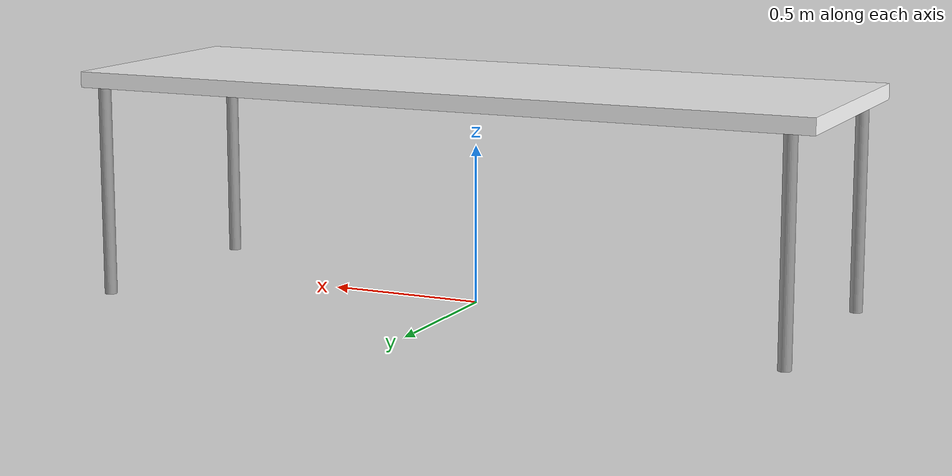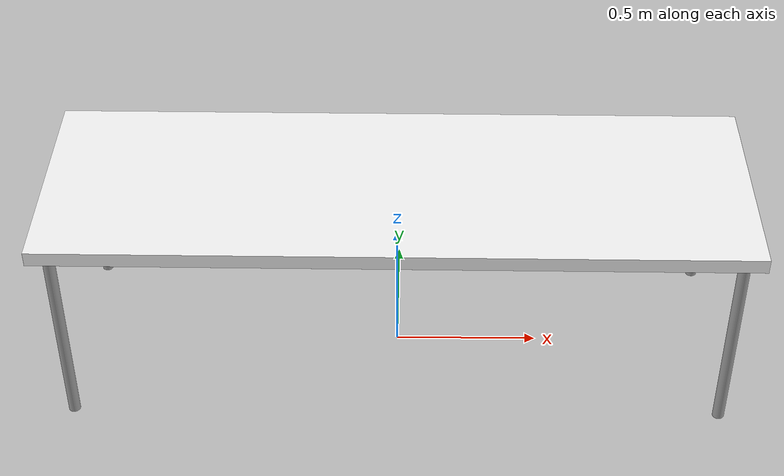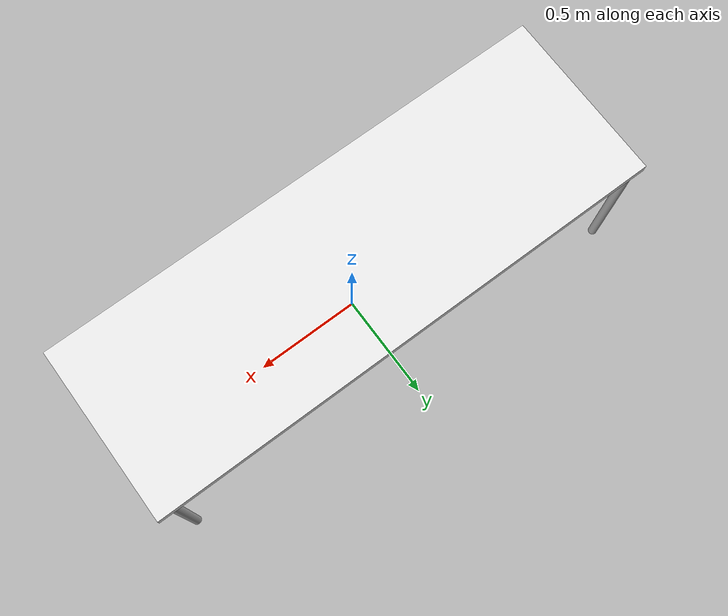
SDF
<sdf version="1.5">
  <model name="Table">
    <static>true</static>
    <link name="link">
      <collision name="surface">
        <pose>0 0 0.69 0 0 0</pose>
        <geometry>
          <box>
            <size>2.39 0.8 0.05</size>
          </box>
        </geometry>
        <surface>
          <friction>
            <ode>
              <mu>0.6</mu>
              <mu2>0.6</mu2>
            </ode>
          </friction>
        </surface>
      </collision>
      <visual name="visual1">
        <pose>0 0 0.69 0 0 0</pose>
        <geometry>
          <box>
            <size>2.39 0.8 0.05</size>
          </box>
        </geometry>
        <material>
          <ambient>1.0 1.0 1.0 1</ambient>
          <diffuse>1.0 1.0 1.0 1</diffuse>
          <!-- PBR for Ignition, material scripts for gazebo classic-->
          <pbr>
            <metal>
              <metalness>0.7</metalness>
              <roughness>0.18</roughness>
            </metal>
          </pbr>
        </material>
      </visual>
      <collision name="front_left_leg">
        <pose>1.12 0.38 0.345 0 0 0</pose>
        <geometry>
          <cylinder>
            <radius>0.02</radius>
            <length>0.69</length>
          </cylinder>
        </geometry>
      </collision>
      <visual name="front_left_leg">
        <pose>1.12 0.38 0.345 0 0 0</pose>
        <geometry>
          <cylinder>
            <radius>0.02</radius>
            <length>0.69</length>
          </cylinder>
        </geometry>
        <material>
          <diffuse>0.5 0.5 0.5</diffuse>
          <script>
            <uri>file://media/materials/scripts/gazebo.material</uri>
            <name>Gazebo/Grey</name>
          </script>
        </material>
      </visual>
      <collision name="front_right_leg">
        <pose>1.12 -0.38 0.345 0 0 0</pose>
        <geometry>
          <cylinder>
            <radius>0.02</radius>
            <length>0.69</length>
          </cylinder>
        </geometry>
      </collision>
      <visual name="front_right_leg">
        <pose>1.12 -0.38 0.345 0 0 0</pose>
        <geometry>
          <cylinder>
            <radius>0.02</radius>
            <length>0.69</length>
          </cylinder>
        </geometry>
        <material>
          <diffuse>0.5 0.5 0.5</diffuse>
          <script>
            <uri>file://media/materials/scripts/gazebo.material</uri>
            <name>Gazebo/Grey</name>
          </script>
        </material>
      </visual>
      <collision name="back_right_leg">
        <pose>-1.12 -0.38 0.345 0 0 0</pose>
        <geometry>
          <cylinder>
            <radius>0.02</radius>
            <length>0.69</length>
          </cylinder>
        </geometry>
      </collision>
      <visual name="back_right_leg">
        <pose>-1.12 -0.38 0.345 0 0 0</pose>
        <geometry>
          <cylinder>
            <radius>0.02</radius>
            <length>0.69</length>
          </cylinder>
        </geometry>
        <material>
          <diffuse>0.5 0.5 0.5</diffuse>
          <script>
            <uri>file://media/materials/scripts/gazebo.material</uri>
            <name>Gazebo/Grey</name>
          </script>
        </material>
      </visual>
      <collision name="back_left_leg">
        <pose>-1.12 0.38 0.345 0 0 0</pose>
        <geometry>
          <cylinder>
            <radius>0.02</radius>
            <length>0.69</length>
          </cylinder>
        </geometry>
      </collision>
      <visual name="back_left_leg">
        <pose>-1.12 0.38 0.345 0 0 0</pose>
        <geometry>
          <cylinder>
            <radius>0.02</radius>
            <length>0.69</length>
          </cylinder>
        </geometry>
        <material>
          <diffuse>0.5 0.5 0.5</diffuse>
          <script>
            <uri>file://media/materials/scripts/gazebo.material</uri>
            <name>Gazebo/Grey</name>
          </script>
        </material>
      </visual>
    </link>
  </model>
</sdf>
